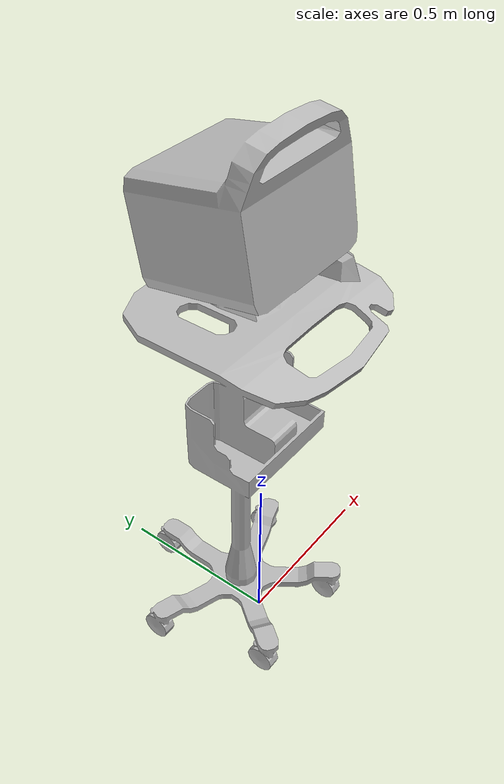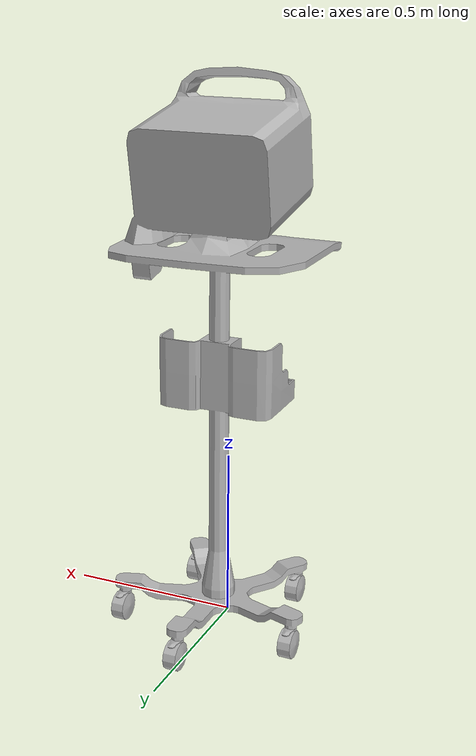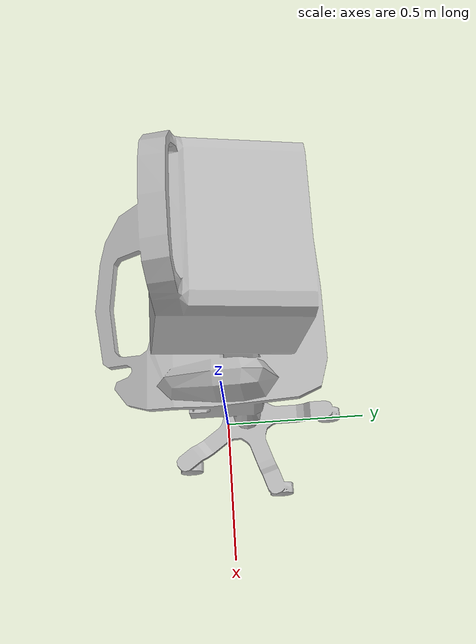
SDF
<?xml version="1.0"?>

<sdf version="1.6">
  <model name='BPCart'>
    <link name="body">
      <pose>0 0 0 0 0 0</pose>

      <visual name="visual">
        <geometry>
          <mesh>
            <uri>model://BPCart/meshes/Cart_BP.obj</uri>
          </mesh>
        </geometry>
      </visual>

      <collision name="collision">
        <geometry>
          <mesh>
            <uri>model://BPCart/meshes/Cart_BP_Col.obj</uri>
          </mesh>
        </geometry>
      </collision>

    </link>
  </model>
</sdf>
